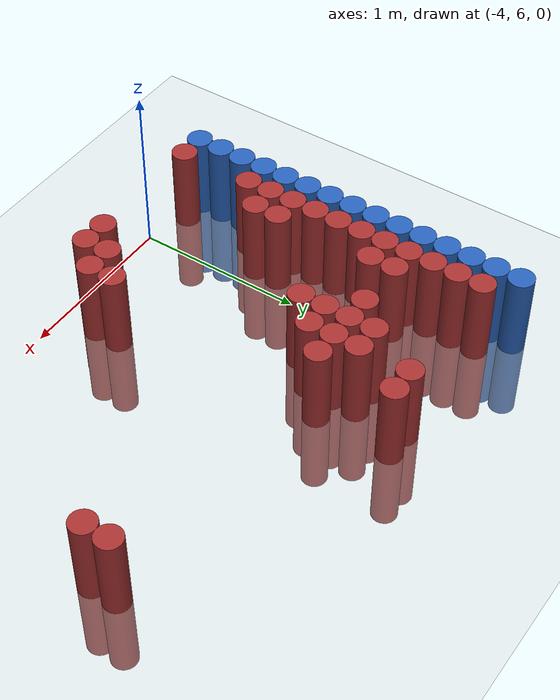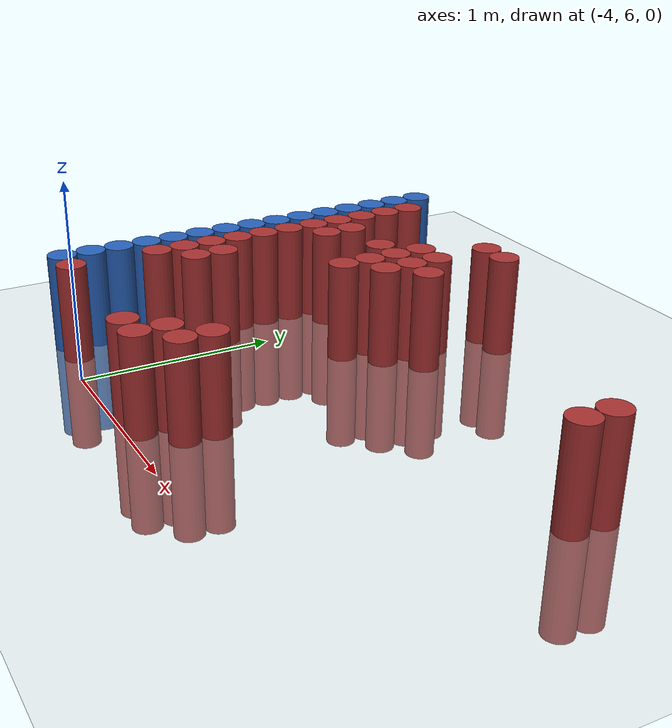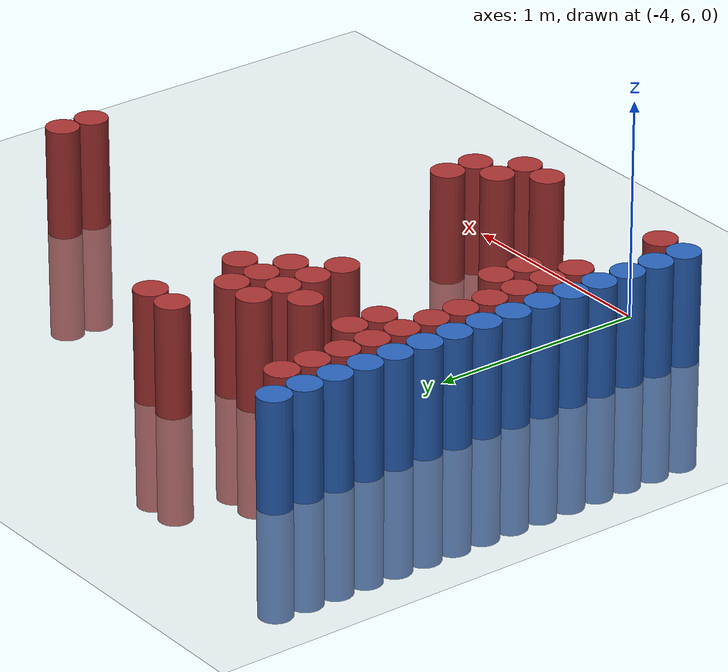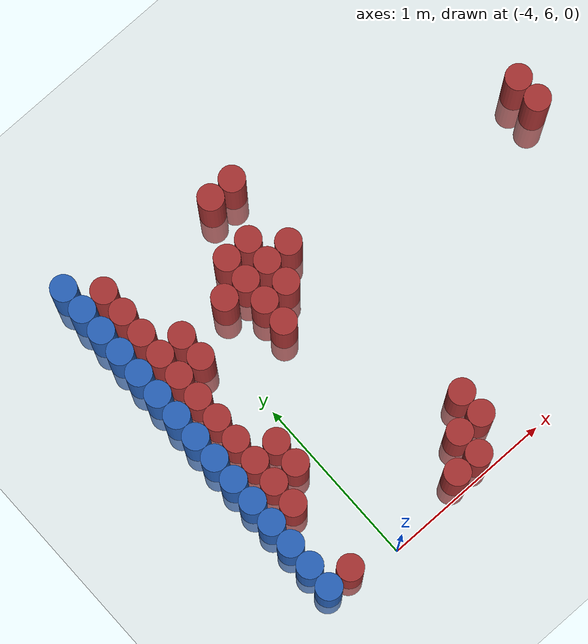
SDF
<sdf version="1.6">
 <world name="default">
  <model name="ground_plane">
   <static>1</static>
   <link name="link">
    <collision name="collision">
     <geometry><plane><normal>0 0 1</normal><size>100 100</size></plane></geometry>
     <surface><friction><ode><mu>100</mu><mu2>50</mu2></ode></friction></surface>
    </collision>
    <visual name="visual">
     <cast_shadows>0</cast_shadows>
     <geometry><plane><normal>0 0 1</normal><size>100 100</size></plane></geometry>
     <material>
      <script><uri>file://media/materials/scripts/gazebo.material</uri><name>Gazebo/Grey</name></script>
     </material>
    </visual>
   </link>
  </model>
  <model name="unit_cylinder_102">
   <static>1</static>
   <pose>-4.425000 6.075000 0.000000 0.000000 0.000000 0.000000</pose>
   <link name="link">
    <inertial>
     <mass>1</mass>
     <inertia><ixx>0.145833</ixx><ixy>0</ixy><ixz>0</ixz><iyy>0.145833</iyy><iyz>0</iyz><izz>0.125</izz></inertia>
    </inertial>
    <collision name="collision">
     <geometry><cylinder><radius>0.075000</radius><length>1</length></cylinder></geometry>
    </collision>
    <visual name="visual">
     <geometry><cylinder><radius>0.075000</radius><length>1</length></cylinder></geometry>
     <material>
      <ambient>0.152000 0.379000 0.720000 1</ambient>
      <diffuse>0.152000 0.379000 0.720000 1</diffuse>
     </material>
     <material>
      <script><name>Gazebo/Grey</name><uri>file://media/materials/scripts/gazebo.material</uri></script>
     </material>
    </visual>
   </link>
  </model>
  <model name="unit_cylinder_103">
   <static>1</static>
   <pose>-4.425000 6.225000 0.000000 0.000000 0.000000 0.000000</pose>
   <link name="link">
    <inertial>
     <mass>1</mass>
     <inertia><ixx>0.145833</ixx><ixy>0</ixy><ixz>0</ixz><iyy>0.145833</iyy><iyz>0</iyz><izz>0.125</izz></inertia>
    </inertial>
    <collision name="collision">
     <geometry><cylinder><radius>0.075000</radius><length>1</length></cylinder></geometry>
    </collision>
    <visual name="visual">
     <geometry><cylinder><radius>0.075000</radius><length>1</length></cylinder></geometry>
     <material>
      <ambient>0.152000 0.379000 0.720000 1</ambient>
      <diffuse>0.152000 0.379000 0.720000 1</diffuse>
     </material>
     <material>
      <script><name>Gazebo/Grey</name><uri>file://media/materials/scripts/gazebo.material</uri></script>
     </material>
    </visual>
   </link>
  </model>
  <model name="unit_cylinder_104">
   <static>1</static>
   <pose>-4.425000 6.375000 0.000000 0.000000 0.000000 0.000000</pose>
   <link name="link">
    <inertial>
     <mass>1</mass>
     <inertia><ixx>0.145833</ixx><ixy>0</ixy><ixz>0</ixz><iyy>0.145833</iyy><iyz>0</iyz><izz>0.125</izz></inertia>
    </inertial>
    <collision name="collision">
     <geometry><cylinder><radius>0.075000</radius><length>1</length></cylinder></geometry>
    </collision>
    <visual name="visual">
     <geometry><cylinder><radius>0.075000</radius><length>1</length></cylinder></geometry>
     <material>
      <ambient>0.152000 0.379000 0.720000 1</ambient>
      <diffuse>0.152000 0.379000 0.720000 1</diffuse>
     </material>
     <material>
      <script><name>Gazebo/Grey</name><uri>file://media/materials/scripts/gazebo.material</uri></script>
     </material>
    </visual>
   </link>
  </model>
  <model name="unit_cylinder_105">
   <static>1</static>
   <pose>-4.425000 6.525000 0.000000 0.000000 0.000000 0.000000</pose>
   <link name="link">
    <inertial>
     <mass>1</mass>
     <inertia><ixx>0.145833</ixx><ixy>0</ixy><ixz>0</ixz><iyy>0.145833</iyy><iyz>0</iyz><izz>0.125</izz></inertia>
    </inertial>
    <collision name="collision">
     <geometry><cylinder><radius>0.075000</radius><length>1</length></cylinder></geometry>
    </collision>
    <visual name="visual">
     <geometry><cylinder><radius>0.075000</radius><length>1</length></cylinder></geometry>
     <material>
      <ambient>0.152000 0.379000 0.720000 1</ambient>
      <diffuse>0.152000 0.379000 0.720000 1</diffuse>
     </material>
     <material>
      <script><name>Gazebo/Grey</name><uri>file://media/materials/scripts/gazebo.material</uri></script>
     </material>
    </visual>
   </link>
  </model>
  <model name="unit_cylinder_106">
   <static>1</static>
   <pose>-4.425000 6.675000 0.000000 0.000000 0.000000 0.000000</pose>
   <link name="link">
    <inertial>
     <mass>1</mass>
     <inertia><ixx>0.145833</ixx><ixy>0</ixy><ixz>0</ixz><iyy>0.145833</iyy><iyz>0</iyz><izz>0.125</izz></inertia>
    </inertial>
    <collision name="collision">
     <geometry><cylinder><radius>0.075000</radius><length>1</length></cylinder></geometry>
    </collision>
    <visual name="visual">
     <geometry><cylinder><radius>0.075000</radius><length>1</length></cylinder></geometry>
     <material>
      <ambient>0.152000 0.379000 0.720000 1</ambient>
      <diffuse>0.152000 0.379000 0.720000 1</diffuse>
     </material>
     <material>
      <script><name>Gazebo/Grey</name><uri>file://media/materials/scripts/gazebo.material</uri></script>
     </material>
    </visual>
   </link>
  </model>
  <model name="unit_cylinder_107">
   <static>1</static>
   <pose>-4.425000 6.825000 0.000000 0.000000 0.000000 0.000000</pose>
   <link name="link">
    <inertial>
     <mass>1</mass>
     <inertia><ixx>0.145833</ixx><ixy>0</ixy><ixz>0</ixz><iyy>0.145833</iyy><iyz>0</iyz><izz>0.125</izz></inertia>
    </inertial>
    <collision name="collision">
     <geometry><cylinder><radius>0.075000</radius><length>1</length></cylinder></geometry>
    </collision>
    <visual name="visual">
     <geometry><cylinder><radius>0.075000</radius><length>1</length></cylinder></geometry>
     <material>
      <ambient>0.152000 0.379000 0.720000 1</ambient>
      <diffuse>0.152000 0.379000 0.720000 1</diffuse>
     </material>
     <material>
      <script><name>Gazebo/Grey</name><uri>file://media/materials/scripts/gazebo.material</uri></script>
     </material>
    </visual>
   </link>
  </model>
  <model name="unit_cylinder_108">
   <static>1</static>
   <pose>-4.425000 6.975000 0.000000 0.000000 0.000000 0.000000</pose>
   <link name="link">
    <inertial>
     <mass>1</mass>
     <inertia><ixx>0.145833</ixx><ixy>0</ixy><ixz>0</ixz><iyy>0.145833</iyy><iyz>0</iyz><izz>0.125</izz></inertia>
    </inertial>
    <collision name="collision">
     <geometry><cylinder><radius>0.075000</radius><length>1</length></cylinder></geometry>
    </collision>
    <visual name="visual">
     <geometry><cylinder><radius>0.075000</radius><length>1</length></cylinder></geometry>
     <material>
      <ambient>0.152000 0.379000 0.720000 1</ambient>
      <diffuse>0.152000 0.379000 0.720000 1</diffuse>
     </material>
     <material>
      <script><name>Gazebo/Grey</name><uri>file://media/materials/scripts/gazebo.material</uri></script>
     </material>
    </visual>
   </link>
  </model>
  <model name="unit_cylinder_109">
   <static>1</static>
   <pose>-4.425000 7.125000 0.000000 0.000000 0.000000 0.000000</pose>
   <link name="link">
    <inertial>
     <mass>1</mass>
     <inertia><ixx>0.145833</ixx><ixy>0</ixy><ixz>0</ixz><iyy>0.145833</iyy><iyz>0</iyz><izz>0.125</izz></inertia>
    </inertial>
    <collision name="collision">
     <geometry><cylinder><radius>0.075000</radius><length>1</length></cylinder></geometry>
    </collision>
    <visual name="visual">
     <geometry><cylinder><radius>0.075000</radius><length>1</length></cylinder></geometry>
     <material>
      <ambient>0.152000 0.379000 0.720000 1</ambient>
      <diffuse>0.152000 0.379000 0.720000 1</diffuse>
     </material>
     <material>
      <script><name>Gazebo/Grey</name><uri>file://media/materials/scripts/gazebo.material</uri></script>
     </material>
    </visual>
   </link>
  </model>
  <model name="unit_cylinder_110">
   <static>1</static>
   <pose>-4.425000 7.275000 0.000000 0.000000 0.000000 0.000000</pose>
   <link name="link">
    <inertial>
     <mass>1</mass>
     <inertia><ixx>0.145833</ixx><ixy>0</ixy><ixz>0</ixz><iyy>0.145833</iyy><iyz>0</iyz><izz>0.125</izz></inertia>
    </inertial>
    <collision name="collision">
     <geometry><cylinder><radius>0.075000</radius><length>1</length></cylinder></geometry>
    </collision>
    <visual name="visual">
     <geometry><cylinder><radius>0.075000</radius><length>1</length></cylinder></geometry>
     <material>
      <ambient>0.152000 0.379000 0.720000 1</ambient>
      <diffuse>0.152000 0.379000 0.720000 1</diffuse>
     </material>
     <material>
      <script><name>Gazebo/Grey</name><uri>file://media/materials/scripts/gazebo.material</uri></script>
     </material>
    </visual>
   </link>
  </model>
  <model name="unit_cylinder_111">
   <static>1</static>
   <pose>-4.425000 7.425000 0.000000 0.000000 0.000000 0.000000</pose>
   <link name="link">
    <inertial>
     <mass>1</mass>
     <inertia><ixx>0.145833</ixx><ixy>0</ixy><ixz>0</ixz><iyy>0.145833</iyy><iyz>0</iyz><izz>0.125</izz></inertia>
    </inertial>
    <collision name="collision">
     <geometry><cylinder><radius>0.075000</radius><length>1</length></cylinder></geometry>
    </collision>
    <visual name="visual">
     <geometry><cylinder><radius>0.075000</radius><length>1</length></cylinder></geometry>
     <material>
      <ambient>0.152000 0.379000 0.720000 1</ambient>
      <diffuse>0.152000 0.379000 0.720000 1</diffuse>
     </material>
     <material>
      <script><name>Gazebo/Grey</name><uri>file://media/materials/scripts/gazebo.material</uri></script>
     </material>
    </visual>
   </link>
  </model>
  <model name="unit_cylinder_112">
   <static>1</static>
   <pose>-4.425000 7.575000 0.000000 0.000000 0.000000 0.000000</pose>
   <link name="link">
    <inertial>
     <mass>1</mass>
     <inertia><ixx>0.145833</ixx><ixy>0</ixy><ixz>0</ixz><iyy>0.145833</iyy><iyz>0</iyz><izz>0.125</izz></inertia>
    </inertial>
    <collision name="collision">
     <geometry><cylinder><radius>0.075000</radius><length>1</length></cylinder></geometry>
    </collision>
    <visual name="visual">
     <geometry><cylinder><radius>0.075000</radius><length>1</length></cylinder></geometry>
     <material>
      <ambient>0.152000 0.379000 0.720000 1</ambient>
      <diffuse>0.152000 0.379000 0.720000 1</diffuse>
     </material>
     <material>
      <script><name>Gazebo/Grey</name><uri>file://media/materials/scripts/gazebo.material</uri></script>
     </material>
    </visual>
   </link>
  </model>
  <model name="unit_cylinder_113">
   <static>1</static>
   <pose>-4.425000 7.725000 0.000000 0.000000 0.000000 0.000000</pose>
   <link name="link">
    <inertial>
     <mass>1</mass>
     <inertia><ixx>0.145833</ixx><ixy>0</ixy><ixz>0</ixz><iyy>0.145833</iyy><iyz>0</iyz><izz>0.125</izz></inertia>
    </inertial>
    <collision name="collision">
     <geometry><cylinder><radius>0.075000</radius><length>1</length></cylinder></geometry>
    </collision>
    <visual name="visual">
     <geometry><cylinder><radius>0.075000</radius><length>1</length></cylinder></geometry>
     <material>
      <ambient>0.152000 0.379000 0.720000 1</ambient>
      <diffuse>0.152000 0.379000 0.720000 1</diffuse>
     </material>
     <material>
      <script><name>Gazebo/Grey</name><uri>file://media/materials/scripts/gazebo.material</uri></script>
     </material>
    </visual>
   </link>
  </model>
  <model name="unit_cylinder_114">
   <static>1</static>
   <pose>-4.425000 7.875000 0.000000 0.000000 0.000000 0.000000</pose>
   <link name="link">
    <inertial>
     <mass>1</mass>
     <inertia><ixx>0.145833</ixx><ixy>0</ixy><ixz>0</ixz><iyy>0.145833</iyy><iyz>0</iyz><izz>0.125</izz></inertia>
    </inertial>
    <collision name="collision">
     <geometry><cylinder><radius>0.075000</radius><length>1</length></cylinder></geometry>
    </collision>
    <visual name="visual">
     <geometry><cylinder><radius>0.075000</radius><length>1</length></cylinder></geometry>
     <material>
      <ambient>0.152000 0.379000 0.720000 1</ambient>
      <diffuse>0.152000 0.379000 0.720000 1</diffuse>
     </material>
     <material>
      <script><name>Gazebo/Grey</name><uri>file://media/materials/scripts/gazebo.material</uri></script>
     </material>
    </visual>
   </link>
  </model>
  <model name="unit_cylinder_115">
   <static>1</static>
   <pose>-4.425000 8.025000 0.000000 0.000000 0.000000 0.000000</pose>
   <link name="link">
    <inertial>
     <mass>1</mass>
     <inertia><ixx>0.145833</ixx><ixy>0</ixy><ixz>0</ixz><iyy>0.145833</iyy><iyz>0</iyz><izz>0.125</izz></inertia>
    </inertial>
    <collision name="collision">
     <geometry><cylinder><radius>0.075000</radius><length>1</length></cylinder></geometry>
    </collision>
    <visual name="visual">
     <geometry><cylinder><radius>0.075000</radius><length>1</length></cylinder></geometry>
     <material>
      <ambient>0.152000 0.379000 0.720000 1</ambient>
      <diffuse>0.152000 0.379000 0.720000 1</diffuse>
     </material>
     <material>
      <script><name>Gazebo/Grey</name><uri>file://media/materials/scripts/gazebo.material</uri></script>
     </material>
    </visual>
   </link>
  </model>
  <model name="unit_cylinder_116">
   <static>1</static>
   <pose>-4.425000 8.175000 0.000000 0.000000 0.000000 0.000000</pose>
   <link name="link">
    <inertial>
     <mass>1</mass>
     <inertia><ixx>0.145833</ixx><ixy>0</ixy><ixz>0</ixz><iyy>0.145833</iyy><iyz>0</iyz><izz>0.125</izz></inertia>
    </inertial>
    <collision name="collision">
     <geometry><cylinder><radius>0.075000</radius><length>1</length></cylinder></geometry>
    </collision>
    <visual name="visual">
     <geometry><cylinder><radius>0.075000</radius><length>1</length></cylinder></geometry>
     <material>
      <ambient>0.152000 0.379000 0.720000 1</ambient>
      <diffuse>0.152000 0.379000 0.720000 1</diffuse>
     </material>
     <material>
      <script><name>Gazebo/Grey</name><uri>file://media/materials/scripts/gazebo.material</uri></script>
     </material>
    </visual>
   </link>
  </model>
  <model name="unit_cylinder_131">
   <static>1</static>
   <pose>-4.275000 6.075000 0.000000 0.000000 0.000000 0.000000</pose>
   <link name="link">
    <inertial>
     <mass>1</mass>
     <inertia><ixx>0.145833</ixx><ixy>0</ixy><ixz>0</ixz><iyy>0.145833</iyy><iyz>0</iyz><izz>0.125</izz></inertia>
    </inertial>
    <collision name="collision">
     <geometry><cylinder><radius>0.075000</radius><length>1</length></cylinder></geometry>
    </collision>
    <visual name="visual">
     <geometry><cylinder><radius>0.075000</radius><length>1</length></cylinder></geometry>
     <material>
      <ambient>0.648000 0.192000 0.192000 1</ambient>
      <diffuse>0.648000 0.192000 0.192000 1</diffuse>
     </material>
     <material>
      <script><name>Gazebo/Grey</name><uri>file://media/materials/scripts/gazebo.material</uri></script>
     </material>
    </visual>
   </link>
  </model>
  <model name="unit_cylinder_132">
   <static>1</static>
   <pose>-4.275000 6.525000 0.000000 0.000000 0.000000 0.000000</pose>
   <link name="link">
    <inertial>
     <mass>1</mass>
     <inertia><ixx>0.145833</ixx><ixy>0</ixy><ixz>0</ixz><iyy>0.145833</iyy><iyz>0</iyz><izz>0.125</izz></inertia>
    </inertial>
    <collision name="collision">
     <geometry><cylinder><radius>0.075000</radius><length>1</length></cylinder></geometry>
    </collision>
    <visual name="visual">
     <geometry><cylinder><radius>0.075000</radius><length>1</length></cylinder></geometry>
     <material>
      <ambient>0.648000 0.192000 0.192000 1</ambient>
      <diffuse>0.648000 0.192000 0.192000 1</diffuse>
     </material>
     <material>
      <script><name>Gazebo/Grey</name><uri>file://media/materials/scripts/gazebo.material</uri></script>
     </material>
    </visual>
   </link>
  </model>
  <model name="unit_cylinder_133">
   <static>1</static>
   <pose>-4.275000 6.675000 0.000000 0.000000 0.000000 0.000000</pose>
   <link name="link">
    <inertial>
     <mass>1</mass>
     <inertia><ixx>0.145833</ixx><ixy>0</ixy><ixz>0</ixz><iyy>0.145833</iyy><iyz>0</iyz><izz>0.125</izz></inertia>
    </inertial>
    <collision name="collision">
     <geometry><cylinder><radius>0.075000</radius><length>1</length></cylinder></geometry>
    </collision>
    <visual name="visual">
     <geometry><cylinder><radius>0.075000</radius><length>1</length></cylinder></geometry>
     <material>
      <ambient>0.648000 0.192000 0.192000 1</ambient>
      <diffuse>0.648000 0.192000 0.192000 1</diffuse>
     </material>
     <material>
      <script><name>Gazebo/Grey</name><uri>file://media/materials/scripts/gazebo.material</uri></script>
     </material>
    </visual>
   </link>
  </model>
  <model name="unit_cylinder_134">
   <static>1</static>
   <pose>-4.275000 6.825000 0.000000 0.000000 0.000000 0.000000</pose>
   <link name="link">
    <inertial>
     <mass>1</mass>
     <inertia><ixx>0.145833</ixx><ixy>0</ixy><ixz>0</ixz><iyy>0.145833</iyy><iyz>0</iyz><izz>0.125</izz></inertia>
    </inertial>
    <collision name="collision">
     <geometry><cylinder><radius>0.075000</radius><length>1</length></cylinder></geometry>
    </collision>
    <visual name="visual">
     <geometry><cylinder><radius>0.075000</radius><length>1</length></cylinder></geometry>
     <material>
      <ambient>0.648000 0.192000 0.192000 1</ambient>
      <diffuse>0.648000 0.192000 0.192000 1</diffuse>
     </material>
     <material>
      <script><name>Gazebo/Grey</name><uri>file://media/materials/scripts/gazebo.material</uri></script>
     </material>
    </visual>
   </link>
  </model>
  <model name="unit_cylinder_135">
   <static>1</static>
   <pose>-4.275000 6.975000 0.000000 0.000000 0.000000 0.000000</pose>
   <link name="link">
    <inertial>
     <mass>1</mass>
     <inertia><ixx>0.145833</ixx><ixy>0</ixy><ixz>0</ixz><iyy>0.145833</iyy><iyz>0</iyz><izz>0.125</izz></inertia>
    </inertial>
    <collision name="collision">
     <geometry><cylinder><radius>0.075000</radius><length>1</length></cylinder></geometry>
    </collision>
    <visual name="visual">
     <geometry><cylinder><radius>0.075000</radius><length>1</length></cylinder></geometry>
     <material>
      <ambient>0.648000 0.192000 0.192000 1</ambient>
      <diffuse>0.648000 0.192000 0.192000 1</diffuse>
     </material>
     <material>
      <script><name>Gazebo/Grey</name><uri>file://media/materials/scripts/gazebo.material</uri></script>
     </material>
    </visual>
   </link>
  </model>
  <model name="unit_cylinder_136">
   <static>1</static>
   <pose>-4.275000 7.125000 0.000000 0.000000 0.000000 0.000000</pose>
   <link name="link">
    <inertial>
     <mass>1</mass>
     <inertia><ixx>0.145833</ixx><ixy>0</ixy><ixz>0</ixz><iyy>0.145833</iyy><iyz>0</iyz><izz>0.125</izz></inertia>
    </inertial>
    <collision name="collision">
     <geometry><cylinder><radius>0.075000</radius><length>1</length></cylinder></geometry>
    </collision>
    <visual name="visual">
     <geometry><cylinder><radius>0.075000</radius><length>1</length></cylinder></geometry>
     <material>
      <ambient>0.648000 0.192000 0.192000 1</ambient>
      <diffuse>0.648000 0.192000 0.192000 1</diffuse>
     </material>
     <material>
      <script><name>Gazebo/Grey</name><uri>file://media/materials/scripts/gazebo.material</uri></script>
     </material>
    </visual>
   </link>
  </model>
  <model name="unit_cylinder_137">
   <static>1</static>
   <pose>-4.275000 7.275000 0.000000 0.000000 0.000000 0.000000</pose>
   <link name="link">
    <inertial>
     <mass>1</mass>
     <inertia><ixx>0.145833</ixx><ixy>0</ixy><ixz>0</ixz><iyy>0.145833</iyy><iyz>0</iyz><izz>0.125</izz></inertia>
    </inertial>
    <collision name="collision">
     <geometry><cylinder><radius>0.075000</radius><length>1</length></cylinder></geometry>
    </collision>
    <visual name="visual">
     <geometry><cylinder><radius>0.075000</radius><length>1</length></cylinder></geometry>
     <material>
      <ambient>0.648000 0.192000 0.192000 1</ambient>
      <diffuse>0.648000 0.192000 0.192000 1</diffuse>
     </material>
     <material>
      <script><name>Gazebo/Grey</name><uri>file://media/materials/scripts/gazebo.material</uri></script>
     </material>
    </visual>
   </link>
  </model>
  <model name="unit_cylinder_138">
   <static>1</static>
   <pose>-4.275000 7.425000 0.000000 0.000000 0.000000 0.000000</pose>
   <link name="link">
    <inertial>
     <mass>1</mass>
     <inertia><ixx>0.145833</ixx><ixy>0</ixy><ixz>0</ixz><iyy>0.145833</iyy><iyz>0</iyz><izz>0.125</izz></inertia>
    </inertial>
    <collision name="collision">
     <geometry><cylinder><radius>0.075000</radius><length>1</length></cylinder></geometry>
    </collision>
    <visual name="visual">
     <geometry><cylinder><radius>0.075000</radius><length>1</length></cylinder></geometry>
     <material>
      <ambient>0.648000 0.192000 0.192000 1</ambient>
      <diffuse>0.648000 0.192000 0.192000 1</diffuse>
     </material>
     <material>
      <script><name>Gazebo/Grey</name><uri>file://media/materials/scripts/gazebo.material</uri></script>
     </material>
    </visual>
   </link>
  </model>
  <model name="unit_cylinder_139">
   <static>1</static>
   <pose>-4.275000 7.575000 0.000000 0.000000 0.000000 0.000000</pose>
   <link name="link">
    <inertial>
     <mass>1</mass>
     <inertia><ixx>0.145833</ixx><ixy>0</ixy><ixz>0</ixz><iyy>0.145833</iyy><iyz>0</iyz><izz>0.125</izz></inertia>
    </inertial>
    <collision name="collision">
     <geometry><cylinder><radius>0.075000</radius><length>1</length></cylinder></geometry>
    </collision>
    <visual name="visual">
     <geometry><cylinder><radius>0.075000</radius><length>1</length></cylinder></geometry>
     <material>
      <ambient>0.648000 0.192000 0.192000 1</ambient>
      <diffuse>0.648000 0.192000 0.192000 1</diffuse>
     </material>
     <material>
      <script><name>Gazebo/Grey</name><uri>file://media/materials/scripts/gazebo.material</uri></script>
     </material>
    </visual>
   </link>
  </model>
  <model name="unit_cylinder_140">
   <static>1</static>
   <pose>-4.275000 7.725000 0.000000 0.000000 0.000000 0.000000</pose>
   <link name="link">
    <inertial>
     <mass>1</mass>
     <inertia><ixx>0.145833</ixx><ixy>0</ixy><ixz>0</ixz><iyy>0.145833</iyy><iyz>0</iyz><izz>0.125</izz></inertia>
    </inertial>
    <collision name="collision">
     <geometry><cylinder><radius>0.075000</radius><length>1</length></cylinder></geometry>
    </collision>
    <visual name="visual">
     <geometry><cylinder><radius>0.075000</radius><length>1</length></cylinder></geometry>
     <material>
      <ambient>0.648000 0.192000 0.192000 1</ambient>
      <diffuse>0.648000 0.192000 0.192000 1</diffuse>
     </material>
     <material>
      <script><name>Gazebo/Grey</name><uri>file://media/materials/scripts/gazebo.material</uri></script>
     </material>
    </visual>
   </link>
  </model>
  <model name="unit_cylinder_141">
   <static>1</static>
   <pose>-4.275000 7.875000 0.000000 0.000000 0.000000 0.000000</pose>
   <link name="link">
    <inertial>
     <mass>1</mass>
     <inertia><ixx>0.145833</ixx><ixy>0</ixy><ixz>0</ixz><iyy>0.145833</iyy><iyz>0</iyz><izz>0.125</izz></inertia>
    </inertial>
    <collision name="collision">
     <geometry><cylinder><radius>0.075000</radius><length>1</length></cylinder></geometry>
    </collision>
    <visual name="visual">
     <geometry><cylinder><radius>0.075000</radius><length>1</length></cylinder></geometry>
     <material>
      <ambient>0.648000 0.192000 0.192000 1</ambient>
      <diffuse>0.648000 0.192000 0.192000 1</diffuse>
     </material>
     <material>
      <script><name>Gazebo/Grey</name><uri>file://media/materials/scripts/gazebo.material</uri></script>
     </material>
    </visual>
   </link>
  </model>
  <model name="unit_cylinder_142">
   <static>1</static>
   <pose>-4.275000 8.025000 0.000000 0.000000 0.000000 0.000000</pose>
   <link name="link">
    <inertial>
     <mass>1</mass>
     <inertia><ixx>0.145833</ixx><ixy>0</ixy><ixz>0</ixz><iyy>0.145833</iyy><iyz>0</iyz><izz>0.125</izz></inertia>
    </inertial>
    <collision name="collision">
     <geometry><cylinder><radius>0.075000</radius><length>1</length></cylinder></geometry>
    </collision>
    <visual name="visual">
     <geometry><cylinder><radius>0.075000</radius><length>1</length></cylinder></geometry>
     <material>
      <ambient>0.648000 0.192000 0.192000 1</ambient>
      <diffuse>0.648000 0.192000 0.192000 1</diffuse>
     </material>
     <material>
      <script><name>Gazebo/Grey</name><uri>file://media/materials/scripts/gazebo.material</uri></script>
     </material>
    </visual>
   </link>
  </model>
  <model name="unit_cylinder_153">
   <static>1</static>
   <pose>-4.125000 6.675000 0.000000 0.000000 0.000000 0.000000</pose>
   <link name="link">
    <inertial>
     <mass>1</mass>
     <inertia><ixx>0.145833</ixx><ixy>0</ixy><ixz>0</ixz><iyy>0.145833</iyy><iyz>0</iyz><izz>0.125</izz></inertia>
    </inertial>
    <collision name="collision">
     <geometry><cylinder><radius>0.075000</radius><length>1</length></cylinder></geometry>
    </collision>
    <visual name="visual">
     <geometry><cylinder><radius>0.075000</radius><length>1</length></cylinder></geometry>
     <material>
      <ambient>0.648000 0.192000 0.192000 1</ambient>
      <diffuse>0.648000 0.192000 0.192000 1</diffuse>
     </material>
     <material>
      <script><name>Gazebo/Grey</name><uri>file://media/materials/scripts/gazebo.material</uri></script>
     </material>
    </visual>
   </link>
  </model>
  <model name="unit_cylinder_154">
   <static>1</static>
   <pose>-4.125000 6.825000 0.000000 0.000000 0.000000 0.000000</pose>
   <link name="link">
    <inertial>
     <mass>1</mass>
     <inertia><ixx>0.145833</ixx><ixy>0</ixy><ixz>0</ixz><iyy>0.145833</iyy><iyz>0</iyz><izz>0.125</izz></inertia>
    </inertial>
    <collision name="collision">
     <geometry><cylinder><radius>0.075000</radius><length>1</length></cylinder></geometry>
    </collision>
    <visual name="visual">
     <geometry><cylinder><radius>0.075000</radius><length>1</length></cylinder></geometry>
     <material>
      <ambient>0.648000 0.192000 0.192000 1</ambient>
      <diffuse>0.648000 0.192000 0.192000 1</diffuse>
     </material>
     <material>
      <script><name>Gazebo/Grey</name><uri>file://media/materials/scripts/gazebo.material</uri></script>
     </material>
    </visual>
   </link>
  </model>
  <model name="unit_cylinder_155">
   <static>1</static>
   <pose>-4.125000 7.425000 0.000000 0.000000 0.000000 0.000000</pose>
   <link name="link">
    <inertial>
     <mass>1</mass>
     <inertia><ixx>0.145833</ixx><ixy>0</ixy><ixz>0</ixz><iyy>0.145833</iyy><iyz>0</iyz><izz>0.125</izz></inertia>
    </inertial>
    <collision name="collision">
     <geometry><cylinder><radius>0.075000</radius><length>1</length></cylinder></geometry>
    </collision>
    <visual name="visual">
     <geometry><cylinder><radius>0.075000</radius><length>1</length></cylinder></geometry>
     <material>
      <ambient>0.648000 0.192000 0.192000 1</ambient>
      <diffuse>0.648000 0.192000 0.192000 1</diffuse>
     </material>
     <material>
      <script><name>Gazebo/Grey</name><uri>file://media/materials/scripts/gazebo.material</uri></script>
     </material>
    </visual>
   </link>
  </model>
  <model name="unit_cylinder_156">
   <static>1</static>
   <pose>-4.125000 7.575000 0.000000 0.000000 0.000000 0.000000</pose>
   <link name="link">
    <inertial>
     <mass>1</mass>
     <inertia><ixx>0.145833</ixx><ixy>0</ixy><ixz>0</ixz><iyy>0.145833</iyy><iyz>0</iyz><izz>0.125</izz></inertia>
    </inertial>
    <collision name="collision">
     <geometry><cylinder><radius>0.075000</radius><length>1</length></cylinder></geometry>
    </collision>
    <visual name="visual">
     <geometry><cylinder><radius>0.075000</radius><length>1</length></cylinder></geometry>
     <material>
      <ambient>0.648000 0.192000 0.192000 1</ambient>
      <diffuse>0.648000 0.192000 0.192000 1</diffuse>
     </material>
     <material>
      <script><name>Gazebo/Grey</name><uri>file://media/materials/scripts/gazebo.material</uri></script>
     </material>
    </visual>
   </link>
  </model>
  <model name="unit_cylinder_169">
   <static>1</static>
   <pose>-3.825000 7.575000 0.000000 0.000000 0.000000 0.000000</pose>
   <link name="link">
    <inertial>
     <mass>1</mass>
     <inertia><ixx>0.145833</ixx><ixy>0</ixy><ixz>0</ixz><iyy>0.145833</iyy><iyz>0</iyz><izz>0.125</izz></inertia>
    </inertial>
    <collision name="collision">
     <geometry><cylinder><radius>0.075000</radius><length>1</length></cylinder></geometry>
    </collision>
    <visual name="visual">
     <geometry><cylinder><radius>0.075000</radius><length>1</length></cylinder></geometry>
     <material>
      <ambient>0.648000 0.192000 0.192000 1</ambient>
      <diffuse>0.648000 0.192000 0.192000 1</diffuse>
     </material>
     <material>
      <script><name>Gazebo/Grey</name><uri>file://media/materials/scripts/gazebo.material</uri></script>
     </material>
    </visual>
   </link>
  </model>
  <model name="unit_cylinder_173">
   <static>1</static>
   <pose>-3.675000 7.275000 0.000000 0.000000 0.000000 0.000000</pose>
   <link name="link">
    <inertial>
     <mass>1</mass>
     <inertia><ixx>0.145833</ixx><ixy>0</ixy><ixz>0</ixz><iyy>0.145833</iyy><iyz>0</iyz><izz>0.125</izz></inertia>
    </inertial>
    <collision name="collision">
     <geometry><cylinder><radius>0.075000</radius><length>1</length></cylinder></geometry>
    </collision>
    <visual name="visual">
     <geometry><cylinder><radius>0.075000</radius><length>1</length></cylinder></geometry>
     <material>
      <ambient>0.648000 0.192000 0.192000 1</ambient>
      <diffuse>0.648000 0.192000 0.192000 1</diffuse>
     </material>
     <material>
      <script><name>Gazebo/Grey</name><uri>file://media/materials/scripts/gazebo.material</uri></script>
     </material>
    </visual>
   </link>
  </model>
  <model name="unit_cylinder_174">
   <static>1</static>
   <pose>-3.675000 7.425000 0.000000 0.000000 0.000000 0.000000</pose>
   <link name="link">
    <inertial>
     <mass>1</mass>
     <inertia><ixx>0.145833</ixx><ixy>0</ixy><ixz>0</ixz><iyy>0.145833</iyy><iyz>0</iyz><izz>0.125</izz></inertia>
    </inertial>
    <collision name="collision">
     <geometry><cylinder><radius>0.075000</radius><length>1</length></cylinder></geometry>
    </collision>
    <visual name="visual">
     <geometry><cylinder><radius>0.075000</radius><length>1</length></cylinder></geometry>
     <material>
      <ambient>0.648000 0.192000 0.192000 1</ambient>
      <diffuse>0.648000 0.192000 0.192000 1</diffuse>
     </material>
     <material>
      <script><name>Gazebo/Grey</name><uri>file://media/materials/scripts/gazebo.material</uri></script>
     </material>
    </visual>
   </link>
  </model>
  <model name="unit_cylinder_175">
   <static>1</static>
   <pose>-3.675000 7.575000 0.000000 0.000000 0.000000 0.000000</pose>
   <link name="link">
    <inertial>
     <mass>1</mass>
     <inertia><ixx>0.145833</ixx><ixy>0</ixy><ixz>0</ixz><iyy>0.145833</iyy><iyz>0</iyz><izz>0.125</izz></inertia>
    </inertial>
    <collision name="collision">
     <geometry><cylinder><radius>0.075000</radius><length>1</length></cylinder></geometry>
    </collision>
    <visual name="visual">
     <geometry><cylinder><radius>0.075000</radius><length>1</length></cylinder></geometry>
     <material>
      <ambient>0.648000 0.192000 0.192000 1</ambient>
      <diffuse>0.648000 0.192000 0.192000 1</diffuse>
     </material>
     <material>
      <script><name>Gazebo/Grey</name><uri>file://media/materials/scripts/gazebo.material</uri></script>
     </material>
    </visual>
   </link>
  </model>
  <model name="unit_cylinder_176">
   <static>1</static>
   <pose>-3.675000 7.725000 0.000000 0.000000 0.000000 0.000000</pose>
   <link name="link">
    <inertial>
     <mass>1</mass>
     <inertia><ixx>0.145833</ixx><ixy>0</ixy><ixz>0</ixz><iyy>0.145833</iyy><iyz>0</iyz><izz>0.125</izz></inertia>
    </inertial>
    <collision name="collision">
     <geometry><cylinder><radius>0.075000</radius><length>1</length></cylinder></geometry>
    </collision>
    <visual name="visual">
     <geometry><cylinder><radius>0.075000</radius><length>1</length></cylinder></geometry>
     <material>
      <ambient>0.648000 0.192000 0.192000 1</ambient>
      <diffuse>0.648000 0.192000 0.192000 1</diffuse>
     </material>
     <material>
      <script><name>Gazebo/Grey</name><uri>file://media/materials/scripts/gazebo.material</uri></script>
     </material>
    </visual>
   </link>
  </model>
  <model name="unit_cylinder_183">
   <static>1</static>
   <pose>-3.525000 6.075000 0.000000 0.000000 0.000000 0.000000</pose>
   <link name="link">
    <inertial>
     <mass>1</mass>
     <inertia><ixx>0.145833</ixx><ixy>0</ixy><ixz>0</ixz><iyy>0.145833</iyy><iyz>0</iyz><izz>0.125</izz></inertia>
    </inertial>
    <collision name="collision">
     <geometry><cylinder><radius>0.075000</radius><length>1</length></cylinder></geometry>
    </collision>
    <visual name="visual">
     <geometry><cylinder><radius>0.075000</radius><length>1</length></cylinder></geometry>
     <material>
      <ambient>0.648000 0.192000 0.192000 1</ambient>
      <diffuse>0.648000 0.192000 0.192000 1</diffuse>
     </material>
     <material>
      <script><name>Gazebo/Grey</name><uri>file://media/materials/scripts/gazebo.material</uri></script>
     </material>
    </visual>
   </link>
  </model>
  <model name="unit_cylinder_184">
   <static>1</static>
   <pose>-3.525000 7.425000 0.000000 0.000000 0.000000 0.000000</pose>
   <link name="link">
    <inertial>
     <mass>1</mass>
     <inertia><ixx>0.145833</ixx><ixy>0</ixy><ixz>0</ixz><iyy>0.145833</iyy><iyz>0</iyz><izz>0.125</izz></inertia>
    </inertial>
    <collision name="collision">
     <geometry><cylinder><radius>0.075000</radius><length>1</length></cylinder></geometry>
    </collision>
    <visual name="visual">
     <geometry><cylinder><radius>0.075000</radius><length>1</length></cylinder></geometry>
     <material>
      <ambient>0.648000 0.192000 0.192000 1</ambient>
      <diffuse>0.648000 0.192000 0.192000 1</diffuse>
     </material>
     <material>
      <script><name>Gazebo/Grey</name><uri>file://media/materials/scripts/gazebo.material</uri></script>
     </material>
    </visual>
   </link>
  </model>
  <model name="unit_cylinder_185">
   <static>1</static>
   <pose>-3.525000 7.575000 0.000000 0.000000 0.000000 0.000000</pose>
   <link name="link">
    <inertial>
     <mass>1</mass>
     <inertia><ixx>0.145833</ixx><ixy>0</ixy><ixz>0</ixz><iyy>0.145833</iyy><iyz>0</iyz><izz>0.125</izz></inertia>
    </inertial>
    <collision name="collision">
     <geometry><cylinder><radius>0.075000</radius><length>1</length></cylinder></geometry>
    </collision>
    <visual name="visual">
     <geometry><cylinder><radius>0.075000</radius><length>1</length></cylinder></geometry>
     <material>
      <ambient>0.648000 0.192000 0.192000 1</ambient>
      <diffuse>0.648000 0.192000 0.192000 1</diffuse>
     </material>
     <material>
      <script><name>Gazebo/Grey</name><uri>file://media/materials/scripts/gazebo.material</uri></script>
     </material>
    </visual>
   </link>
  </model>
  <model name="unit_cylinder_186">
   <static>1</static>
   <pose>-3.525000 7.725000 0.000000 0.000000 0.000000 0.000000</pose>
   <link name="link">
    <inertial>
     <mass>1</mass>
     <inertia><ixx>0.145833</ixx><ixy>0</ixy><ixz>0</ixz><iyy>0.145833</iyy><iyz>0</iyz><izz>0.125</izz></inertia>
    </inertial>
    <collision name="collision">
     <geometry><cylinder><radius>0.075000</radius><length>1</length></cylinder></geometry>
    </collision>
    <visual name="visual">
     <geometry><cylinder><radius>0.075000</radius><length>1</length></cylinder></geometry>
     <material>
      <ambient>0.648000 0.192000 0.192000 1</ambient>
      <diffuse>0.648000 0.192000 0.192000 1</diffuse>
     </material>
     <material>
      <script><name>Gazebo/Grey</name><uri>file://media/materials/scripts/gazebo.material</uri></script>
     </material>
    </visual>
   </link>
  </model>
  <model name="unit_cylinder_187">
   <static>1</static>
   <pose>-3.525000 8.025000 0.000000 0.000000 0.000000 0.000000</pose>
   <link name="link">
    <inertial>
     <mass>1</mass>
     <inertia><ixx>0.145833</ixx><ixy>0</ixy><ixz>0</ixz><iyy>0.145833</iyy><iyz>0</iyz><izz>0.125</izz></inertia>
    </inertial>
    <collision name="collision">
     <geometry><cylinder><radius>0.075000</radius><length>1</length></cylinder></geometry>
    </collision>
    <visual name="visual">
     <geometry><cylinder><radius>0.075000</radius><length>1</length></cylinder></geometry>
     <material>
      <ambient>0.648000 0.192000 0.192000 1</ambient>
      <diffuse>0.648000 0.192000 0.192000 1</diffuse>
     </material>
     <material>
      <script><name>Gazebo/Grey</name><uri>file://media/materials/scripts/gazebo.material</uri></script>
     </material>
    </visual>
   </link>
  </model>
  <model name="unit_cylinder_195">
   <static>1</static>
   <pose>-3.375000 6.075000 0.000000 0.000000 0.000000 0.000000</pose>
   <link name="link">
    <inertial>
     <mass>1</mass>
     <inertia><ixx>0.145833</ixx><ixy>0</ixy><ixz>0</ixz><iyy>0.145833</iyy><iyz>0</iyz><izz>0.125</izz></inertia>
    </inertial>
    <collision name="collision">
     <geometry><cylinder><radius>0.075000</radius><length>1</length></cylinder></geometry>
    </collision>
    <visual name="visual">
     <geometry><cylinder><radius>0.075000</radius><length>1</length></cylinder></geometry>
     <material>
      <ambient>0.648000 0.192000 0.192000 1</ambient>
      <diffuse>0.648000 0.192000 0.192000 1</diffuse>
     </material>
     <material>
      <script><name>Gazebo/Grey</name><uri>file://media/materials/scripts/gazebo.material</uri></script>
     </material>
    </visual>
   </link>
  </model>
  <model name="unit_cylinder_196">
   <static>1</static>
   <pose>-3.375000 6.225000 0.000000 0.000000 0.000000 0.000000</pose>
   <link name="link">
    <inertial>
     <mass>1</mass>
     <inertia><ixx>0.145833</ixx><ixy>0</ixy><ixz>0</ixz><iyy>0.145833</iyy><iyz>0</iyz><izz>0.125</izz></inertia>
    </inertial>
    <collision name="collision">
     <geometry><cylinder><radius>0.075000</radius><length>1</length></cylinder></geometry>
    </collision>
    <visual name="visual">
     <geometry><cylinder><radius>0.075000</radius><length>1</length></cylinder></geometry>
     <material>
      <ambient>0.648000 0.192000 0.192000 1</ambient>
      <diffuse>0.648000 0.192000 0.192000 1</diffuse>
     </material>
     <material>
      <script><name>Gazebo/Grey</name><uri>file://media/materials/scripts/gazebo.material</uri></script>
     </material>
    </visual>
   </link>
  </model>
  <model name="unit_cylinder_197">
   <static>1</static>
   <pose>-3.375000 7.575000 0.000000 0.000000 0.000000 0.000000</pose>
   <link name="link">
    <inertial>
     <mass>1</mass>
     <inertia><ixx>0.145833</ixx><ixy>0</ixy><ixz>0</ixz><iyy>0.145833</iyy><iyz>0</iyz><izz>0.125</izz></inertia>
    </inertial>
    <collision name="collision">
     <geometry><cylinder><radius>0.075000</radius><length>1</length></cylinder></geometry>
    </collision>
    <visual name="visual">
     <geometry><cylinder><radius>0.075000</radius><length>1</length></cylinder></geometry>
     <material>
      <ambient>0.648000 0.192000 0.192000 1</ambient>
      <diffuse>0.648000 0.192000 0.192000 1</diffuse>
     </material>
     <material>
      <script><name>Gazebo/Grey</name><uri>file://media/materials/scripts/gazebo.material</uri></script>
     </material>
    </visual>
   </link>
  </model>
  <model name="unit_cylinder_198">
   <static>1</static>
   <pose>-3.375000 8.025000 0.000000 0.000000 0.000000 0.000000</pose>
   <link name="link">
    <inertial>
     <mass>1</mass>
     <inertia><ixx>0.145833</ixx><ixy>0</ixy><ixz>0</ixz><iyy>0.145833</iyy><iyz>0</iyz><izz>0.125</izz></inertia>
    </inertial>
    <collision name="collision">
     <geometry><cylinder><radius>0.075000</radius><length>1</length></cylinder></geometry>
    </collision>
    <visual name="visual">
     <geometry><cylinder><radius>0.075000</radius><length>1</length></cylinder></geometry>
     <material>
      <ambient>0.648000 0.192000 0.192000 1</ambient>
      <diffuse>0.648000 0.192000 0.192000 1</diffuse>
     </material>
     <material>
      <script><name>Gazebo/Grey</name><uri>file://media/materials/scripts/gazebo.material</uri></script>
     </material>
    </visual>
   </link>
  </model>
  <model name="unit_cylinder_201">
   <static>1</static>
   <pose>-3.225000 6.225000 0.000000 0.000000 0.000000 0.000000</pose>
   <link name="link">
    <inertial>
     <mass>1</mass>
     <inertia><ixx>0.145833</ixx><ixy>0</ixy><ixz>0</ixz><iyy>0.145833</iyy><iyz>0</iyz><izz>0.125</izz></inertia>
    </inertial>
    <collision name="collision">
     <geometry><cylinder><radius>0.075000</radius><length>1</length></cylinder></geometry>
    </collision>
    <visual name="visual">
     <geometry><cylinder><radius>0.075000</radius><length>1</length></cylinder></geometry>
     <material>
      <ambient>0.648000 0.192000 0.192000 1</ambient>
      <diffuse>0.648000 0.192000 0.192000 1</diffuse>
     </material>
     <material>
      <script><name>Gazebo/Grey</name><uri>file://media/materials/scripts/gazebo.material</uri></script>
     </material>
    </visual>
   </link>
  </model>
  <model name="unit_cylinder_202">
   <static>1</static>
   <pose>-3.225000 6.375000 0.000000 0.000000 0.000000 0.000000</pose>
   <link name="link">
    <inertial>
     <mass>1</mass>
     <inertia><ixx>0.145833</ixx><ixy>0</ixy><ixz>0</ixz><iyy>0.145833</iyy><iyz>0</iyz><izz>0.125</izz></inertia>
    </inertial>
    <collision name="collision">
     <geometry><cylinder><radius>0.075000</radius><length>1</length></cylinder></geometry>
    </collision>
    <visual name="visual">
     <geometry><cylinder><radius>0.075000</radius><length>1</length></cylinder></geometry>
     <material>
      <ambient>0.648000 0.192000 0.192000 1</ambient>
      <diffuse>0.648000 0.192000 0.192000 1</diffuse>
     </material>
     <material>
      <script><name>Gazebo/Grey</name><uri>file://media/materials/scripts/gazebo.material</uri></script>
     </material>
    </visual>
   </link>
  </model>
  <model name="unit_cylinder_229">
   <static>1</static>
   <pose>-1.875000 7.275000 0.000000 0.000000 0.000000 0.000000</pose>
   <link name="link">
    <inertial>
     <mass>1</mass>
     <inertia><ixx>0.145833</ixx><ixy>0</ixy><ixz>0</ixz><iyy>0.145833</iyy><iyz>0</iyz><izz>0.125</izz></inertia>
    </inertial>
    <collision name="collision">
     <geometry><cylinder><radius>0.075000</radius><length>1</length></cylinder></geometry>
    </collision>
    <visual name="visual">
     <geometry><cylinder><radius>0.075000</radius><length>1</length></cylinder></geometry>
     <material>
      <ambient>0.648000 0.192000 0.192000 1</ambient>
      <diffuse>0.648000 0.192000 0.192000 1</diffuse>
     </material>
     <material>
      <script><name>Gazebo/Grey</name><uri>file://media/materials/scripts/gazebo.material</uri></script>
     </material>
    </visual>
   </link>
  </model>
  <model name="unit_cylinder_230">
   <static>1</static>
   <pose>-1.875000 7.425000 0.000000 0.000000 0.000000 0.000000</pose>
   <link name="link">
    <inertial>
     <mass>1</mass>
     <inertia><ixx>0.145833</ixx><ixy>0</ixy><ixz>0</ixz><iyy>0.145833</iyy><iyz>0</iyz><izz>0.125</izz></inertia>
    </inertial>
    <collision name="collision">
     <geometry><cylinder><radius>0.075000</radius><length>1</length></cylinder></geometry>
    </collision>
    <visual name="visual">
     <geometry><cylinder><radius>0.075000</radius><length>1</length></cylinder></geometry>
     <material>
      <ambient>0.648000 0.192000 0.192000 1</ambient>
      <diffuse>0.648000 0.192000 0.192000 1</diffuse>
     </material>
     <material>
      <script><name>Gazebo/Grey</name><uri>file://media/materials/scripts/gazebo.material</uri></script>
     </material>
    </visual>
   </link>
  </model>
 </world>
</sdf>
